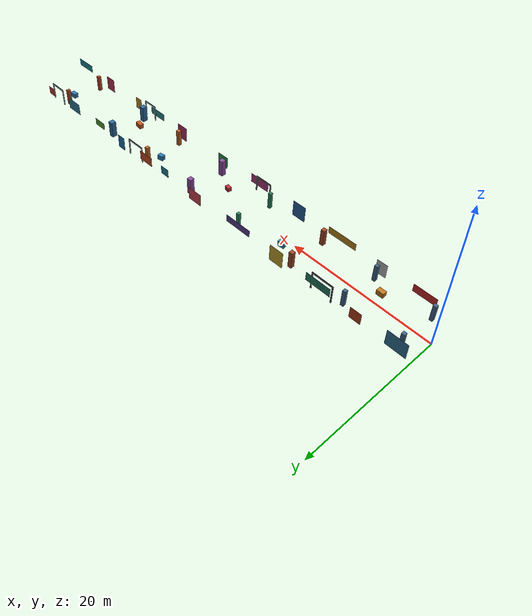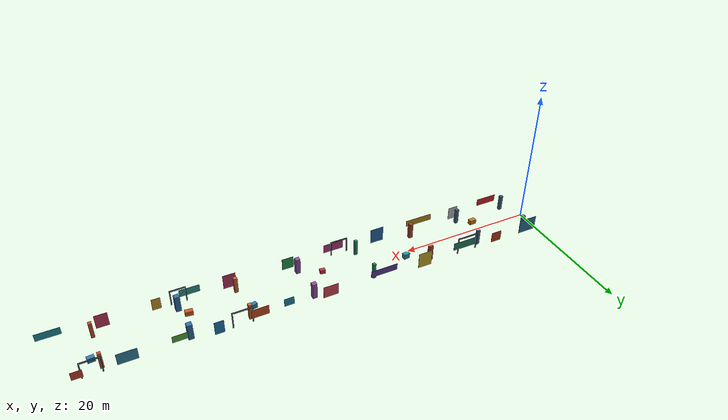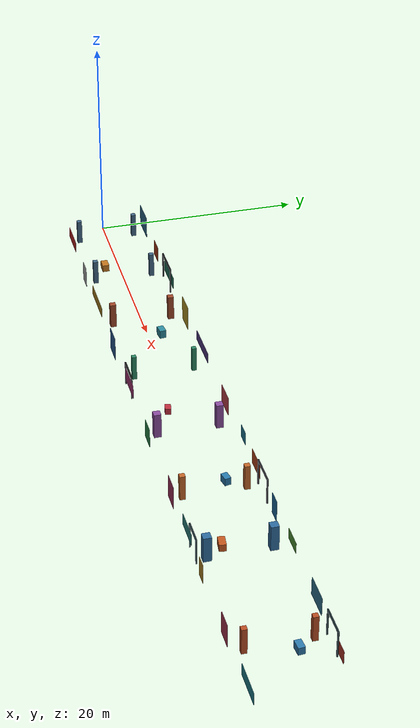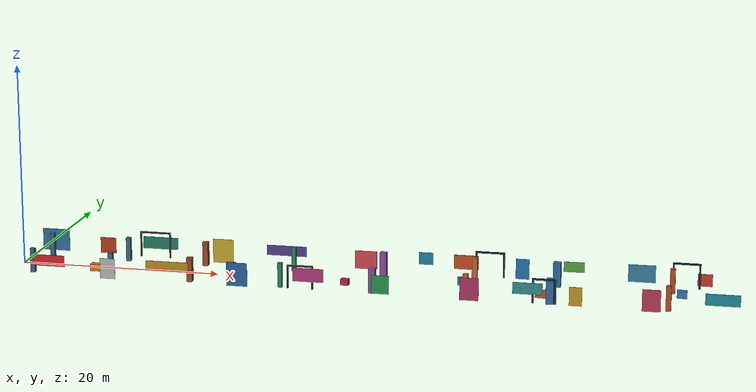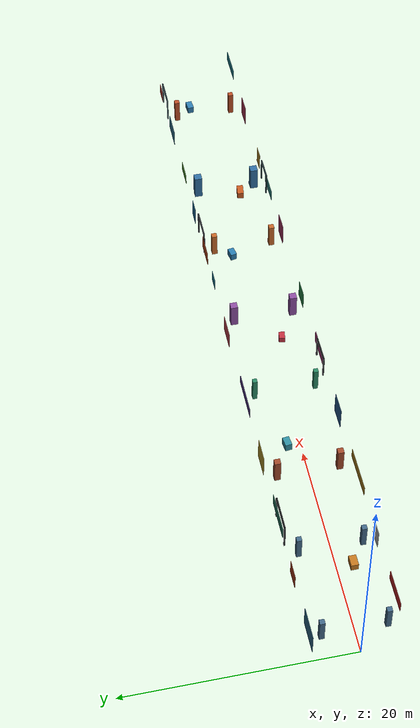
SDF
<sdf version="1.6">
 <world name="terminal_basic">
  <include><uri>model://sun</uri></include>
  <model name="left_panel_01">
   <static>true</static>
   <pose>2 3.88 1.45 0 0 0</pose>
   <link name="link">
    <visual name="visual">
     <geometry><box><size>2.8 0.03 2.2</size></box></geometry>
     <material><diffuse>0.18 0.44 0.58 1</diffuse></material>
    </visual>
   </link>
  </model>
  <model name="left_panel_02">
   <static>true</static>
   <pose>7.5 3.88 1.15 0 0 0</pose>
   <link name="link">
    <visual name="visual">
     <geometry><box><size>1.6 0.03 1.6</size></box></geometry>
     <material><diffuse>0.72 0.24 0.10 1</diffuse></material>
    </visual>
   </link>
  </model>
  <model name="left_panel_03">
   <static>true</static>
   <pose>13 3.88 1.7 0 0 0</pose>
   <link name="link">
    <visual name="visual">
     <geometry><box><size>3.6 0.03 1.2</size></box></geometry>
     <material><diffuse>0.14 0.48 0.38 1</diffuse></material>
    </visual>
   </link>
  </model>
  <model name="left_panel_04">
   <static>true</static>
   <pose>19.5 3.88 1.25 0 0 0</pose>
   <link name="link">
    <visual name="visual">
     <geometry><box><size>2.1 0.03 2.4</size></box></geometry>
     <material><diffuse>0.78 0.66 0.18 1</diffuse></material>
    </visual>
   </link>
  </model>
  <model name="left_panel_05">
   <static>true</static>
   <pose>26 3.88 1.65 0 0 0</pose>
   <link name="link">
    <visual name="visual">
     <geometry><box><size>4.0 0.03 1.0</size></box></geometry>
     <material><diffuse>0.34 0.24 0.56 1</diffuse></material>
    </visual>
   </link>
  </model>
  <model name="left_panel_06">
   <static>true</static>
   <pose>34 3.88 1.2 0 0 0</pose>
   <link name="link">
    <visual name="visual">
     <geometry><box><size>2.2 0.03 1.8</size></box></geometry>
     <material><diffuse>0.82 0.28 0.32 1</diffuse></material>
    </visual>
   </link>
  </model>
  <model name="left_panel_07">
   <static>true</static>
   <pose>40 3.88 1.7 0 0 0</pose>
   <link name="link">
    <visual name="visual">
     <geometry><box><size>1.4 0.03 1.2</size></box></geometry>
     <material><diffuse>0.12 0.52 0.64 1</diffuse></material>
    </visual>
   </link>
  </model>
  <model name="right_panel_01">
   <static>true</static>
   <pose>4 -3.88 1.55 0 0 0</pose>
   <link name="link">
    <visual name="visual">
     <geometry><box><size>3.2 0.03 1.1</size></box></geometry>
     <material>
      <script>
       <uri>model://visual_slam_gazebo/materials/scripts/visual_slam.material</uri>
       <name>VisualSlam/PanelRed</name>
      </script>
     </material>
    </visual>
   </link>
  </model>
  <model name="right_panel_02">
   <static>true</static>
   <pose>10 -3.88 1.1 0 0 0</pose>
   <link name="link">
    <visual name="visual">
     <geometry><box><size>1.5 0.03 2.0</size></box></geometry>
     <material>
      <script>
       <uri>model://visual_slam_gazebo/materials/scripts/visual_slam.material</uri>
       <name>VisualSlam/PanelTeal</name>
      </script>
     </material>
    </visual>
   </link>
  </model>
  <model name="right_panel_03">
   <static>true</static>
   <pose>16 -3.88 1.65 0 0 0</pose>
   <link name="link">
    <visual name="visual">
     <geometry><box><size>4.2 0.03 1.0</size></box></geometry>
     <material><diffuse>0.72 0.54 0.12 1</diffuse></material>
    </visual>
   </link>
  </model>
  <model name="right_panel_04">
   <static>true</static>
   <pose>23 -3.88 1.3 0 0 0</pose>
   <link name="link">
    <visual name="visual">
     <geometry><box><size>2.0 0.03 2.3</size></box></geometry>
     <material><diffuse>0.16 0.38 0.62 1</diffuse></material>
    </visual>
   </link>
  </model>
  <model name="right_panel_05">
   <static>true</static>
   <pose>30 -3.88 1.65 0 0 0</pose>
   <link name="link">
    <visual name="visual">
     <geometry><box><size>3.0 0.03 1.3</size></box></geometry>
     <material><diffuse>0.68 0.22 0.48 1</diffuse></material>
    </visual>
   </link>
  </model>
  <model name="right_panel_06">
   <static>true</static>
   <pose>37 -3.88 1.15 0 0 0</pose>
   <link name="link">
    <visual name="visual">
     <geometry><box><size>1.7 0.03 1.8</size></box></geometry>
     <material><diffuse>0.16 0.58 0.30 1</diffuse></material>
    </visual>
   </link>
  </model>
  <model name="left_panel_08">
   <static>true</static>
   <pose>44 3.88 1.55 0 0 0</pose>
   <link name="link">
    <visual name="visual">
     <geometry><box><size>2.4 0.03 1.4</size></box></geometry>
     <material><diffuse>0.78 0.30 0.12 1</diffuse></material>
    </visual>
   </link>
  </model>
  <model name="left_panel_09">
   <static>true</static>
   <pose>49.5 3.88 1.2 0 0 0</pose>
   <link name="link">
    <visual name="visual">
     <geometry><box><size>1.3 0.03 2.0</size></box></geometry>
     <material><diffuse>0.12 0.46 0.68 1</diffuse></material>
    </visual>
   </link>
  </model>
  <model name="left_panel_10">
   <static>true</static>
   <pose>54.5 3.88 1.7 0 0 0</pose>
   <link name="link">
    <visual name="visual">
     <geometry><box><size>2.0 0.03 1.0</size></box></geometry>
     <material><diffuse>0.34 0.64 0.22 1</diffuse></material>
    </visual>
   </link>
  </model>
  <model name="right_panel_07">
   <static>true</static>
   <pose>45.5 -3.88 1.25 0 0 0</pose>
   <link name="link">
    <visual name="visual">
     <geometry><box><size>1.8 0.03 2.2</size></box></geometry>
     <material><diffuse>0.68 0.20 0.38 1</diffuse></material>
    </visual>
   </link>
  </model>
  <model name="right_panel_08">
   <static>true</static>
   <pose>51 -3.88 1.65 0 0 0</pose>
   <link name="link">
    <visual name="visual">
     <geometry><box><size>2.8 0.03 1.1</size></box></geometry>
     <material><diffuse>0.18 0.56 0.54 1</diffuse></material>
    </visual>
   </link>
  </model>
  <model name="right_panel_09">
   <static>true</static>
   <pose>55.5 -3.88 1.15 0 0 0</pose>
   <link name="link">
    <visual name="visual">
     <geometry><box><size>1.2 0.03 1.8</size></box></geometry>
     <material><diffuse>0.76 0.58 0.16 1</diffuse></material>
    </visual>
   </link>
  </model>
  <model name="left_panel_11">
   <static>true</static>
   <pose>61 3.88 1.45 0 0 0</pose>
   <link name="link">
    <visual name="visual">
     <geometry><box><size>2.6 0.03 1.7</size></box></geometry>
     <material><diffuse>0.20 0.50 0.62 1</diffuse></material>
    </visual>
   </link>
  </model>
  <model name="left_panel_12">
   <static>true</static>
   <pose>67 3.88 1.15 0 0 0</pose>
   <link name="link">
    <visual name="visual">
     <geometry><box><size>1.4 0.03 1.2</size></box></geometry>
     <material><diffuse>0.76 0.24 0.18 1</diffuse></material>
    </visual>
   </link>
  </model>
  <model name="right_panel_10">
   <static>true</static>
   <pose>62.5 -3.88 1.2 0 0 0</pose>
   <link name="link">
    <visual name="visual">
     <geometry><box><size>1.7 0.03 2.1</size></box></geometry>
     <material><diffuse>0.72 0.22 0.34 1</diffuse></material>
    </visual>
   </link>
  </model>
  <model name="right_panel_11">
   <static>true</static>
   <pose>69 -3.88 1.65 0 0 0</pose>
   <link name="link">
    <visual name="visual">
     <geometry><box><size>3.2 0.03 1.1</size></box></geometry>
     <material><diffuse>0.12 0.54 0.60 1</diffuse></material>
    </visual>
   </link>
  </model>
  <model name="door_frame_a">
   <static>true</static>
   <pose>11 3.78 1.55 0 0 0</pose>
   <link name="link">
    <visual name="post_l">
     <geometry><box><size>0.16 0.12 2.6</size></box></geometry>
     <material><diffuse>0.08 0.08 0.09 1</diffuse></material>
    </visual>
    <visual name="post_r">
     <pose>3.0 0 0 0 0 0</pose>
     <geometry><box><size>0.16 0.12 2.6</size></box></geometry>
     <material><diffuse>0.08 0.08 0.09 1</diffuse></material>
    </visual>
    <visual name="top">
     <pose>1.5 0 1.22 0 0 0</pose>
     <geometry><box><size>3.15 0.12 0.16</size></box></geometry>
     <material><diffuse>0.08 0.08 0.09 1</diffuse></material>
    </visual>
   </link>
  </model>
  <model name="door_frame_b">
   <static>true</static>
   <pose>28 -3.78 1.4 0 0 0</pose>
   <link name="link">
    <visual name="post_l">
     <geometry><box><size>0.16 0.12 2.3</size></box></geometry>
     <material><diffuse>0.08 0.08 0.09 1</diffuse></material>
    </visual>
    <visual name="post_r">
     <pose>2.4 0 0 0 0 0</pose>
     <geometry><box><size>0.16 0.12 2.3</size></box></geometry>
     <material><diffuse>0.08 0.08 0.09 1</diffuse></material>
    </visual>
    <visual name="top">
     <pose>1.2 0 1.08 0 0 0</pose>
     <geometry><box><size>2.55 0.12 0.16</size></box></geometry>
     <material><diffuse>0.08 0.08 0.09 1</diffuse></material>
    </visual>
   </link>
  </model>
  <model name="door_frame_c">
   <static>true</static>
   <pose>45 3.78 1.5 0 0 0</pose>
   <link name="link">
    <visual name="post_l">
     <geometry><box><size>0.16 0.12 2.5</size></box></geometry>
     <material><diffuse>0.15 0.15 0.18 1</diffuse></material>
    </visual>
    <visual name="post_r">
     <pose>2.7 0 0 0 0 0</pose>
     <geometry><box><size>0.16 0.12 2.5</size></box></geometry>
     <material><diffuse>0.15 0.15 0.18 1</diffuse></material>
    </visual>
    <visual name="top">
     <pose>1.35 0 1.18 0 0 0</pose>
     <geometry><box><size>2.85 0.12 0.16</size></box></geometry>
     <material><diffuse>0.15 0.15 0.18 1</diffuse></material>
    </visual>
   </link>
  </model>
  <model name="door_frame_d">
   <static>true</static>
   <pose>51.5 -3.78 1.45 0 0 0</pose>
   <link name="link">
    <visual name="post_l">
     <geometry><box><size>0.16 0.12 2.4</size></box></geometry>
     <material><diffuse>0.10 0.18 0.20 1</diffuse></material>
    </visual>
    <visual name="post_r">
     <pose>2.1 0 0 0 0 0</pose>
     <geometry><box><size>0.16 0.12 2.4</size></box></geometry>
     <material><diffuse>0.10 0.18 0.20 1</diffuse></material>
    </visual>
    <visual name="top">
     <pose>1.05 0 1.12 0 0 0</pose>
     <geometry><box><size>2.25 0.12 0.16</size></box></geometry>
     <material><diffuse>0.10 0.18 0.20 1</diffuse></material>
    </visual>
   </link>
  </model>
  <model name="door_frame_e">
   <static>true</static>
   <pose>64 3.78 1.5 0 0 0</pose>
   <link name="link">
    <visual name="post_l">
     <geometry><box><size>0.16 0.12 2.5</size></box></geometry>
     <material><diffuse>0.08 0.16 0.18 1</diffuse></material>
    </visual>
    <visual name="post_r">
     <pose>2.5 0 0 0 0 0</pose>
     <geometry><box><size>0.16 0.12 2.5</size></box></geometry>
     <material><diffuse>0.08 0.16 0.18 1</diffuse></material>
    </visual>
    <visual name="top">
     <pose>1.25 0 1.18 0 0 0</pose>
     <geometry><box><size>2.65 0.12 0.16</size></box></geometry>
     <material><diffuse>0.08 0.16 0.18 1</diffuse></material>
    </visual>
   </link>
  </model>
  <model name="pillar_1">
   <static>true</static>
   <pose>2 2.8 1.2 0 0 0</pose>
   <link name="link">
    <collision name="collision"><geometry><box><size>0.45 0.45 2.4</size></box></geometry></collision>
    <visual name="visual">
     <geometry><box><size>0.45 0.45 2.4</size></box></geometry>
     <material><diffuse>0.25 0.4 0.52 1</diffuse></material>
    </visual>
   </link>
  </model>
  <model name="pillar_2">
   <static>true</static>
   <pose>2 -2.8 1.2 0 0 0</pose>
   <link name="link">
    <collision name="collision"><geometry><box><size>0.45 0.45 2.4</size></box></geometry></collision>
    <visual name="visual">
     <geometry><box><size>0.45 0.45 2.4</size></box></geometry>
     <material><diffuse>0.25 0.4 0.52 1</diffuse></material>
    </visual>
   </link>
  </model>
  <model name="pillar_3">
   <static>true</static>
   <pose>10 2.8 1.2 0 0 0</pose>
   <link name="link">
    <collision name="collision"><geometry><box><size>0.45 0.45 2.4</size></box></geometry></collision>
    <visual name="visual">
     <geometry><box><size>0.45 0.45 2.4</size></box></geometry>
     <material><diffuse>0.25 0.4 0.52 1</diffuse></material>
    </visual>
   </link>
  </model>
  <model name="pillar_4">
   <static>true</static>
   <pose>10 -2.8 1.2 0 0 0</pose>
   <link name="link">
    <collision name="collision"><geometry><box><size>0.45 0.45 2.4</size></box></geometry></collision>
    <visual name="visual">
     <geometry><box><size>0.45 0.45 2.4</size></box></geometry>
     <material><diffuse>0.25 0.4 0.52 1</diffuse></material>
    </visual>
   </link>
  </model>
  <model name="pillar_5">
   <static>true</static>
   <pose>18 2.8 1.2 0 0 0</pose>
   <link name="link">
    <collision name="collision"><geometry><box><size>0.55 0.55 2.4</size></box></geometry></collision>
    <visual name="visual">
     <geometry><box><size>0.55 0.55 2.4</size></box></geometry>
     <material><diffuse>0.62 0.28 0.16 1</diffuse></material>
    </visual>
   </link>
  </model>
  <model name="pillar_6">
   <static>true</static>
   <pose>18 -2.8 1.2 0 0 0</pose>
   <link name="link">
    <collision name="collision"><geometry><box><size>0.55 0.55 2.4</size></box></geometry></collision>
    <visual name="visual">
     <geometry><box><size>0.55 0.55 2.4</size></box></geometry>
     <material><diffuse>0.62 0.28 0.16 1</diffuse></material>
    </visual>
   </link>
  </model>
  <model name="pillar_7">
   <static>true</static>
   <pose>27 2.8 1.2 0 0 0</pose>
   <link name="link">
    <collision name="collision"><geometry><box><size>0.42 0.42 2.4</size></box></geometry></collision>
    <visual name="visual">
     <geometry><box><size>0.42 0.42 2.4</size></box></geometry>
     <material><diffuse>0.16 0.52 0.38 1</diffuse></material>
    </visual>
   </link>
  </model>
  <model name="pillar_8">
   <static>true</static>
   <pose>27 -2.8 1.2 0 0 0</pose>
   <link name="link">
    <collision name="collision"><geometry><box><size>0.42 0.42 2.4</size></box></geometry></collision>
    <visual name="visual">
     <geometry><box><size>0.42 0.42 2.4</size></box></geometry>
     <material><diffuse>0.16 0.52 0.38 1</diffuse></material>
    </visual>
   </link>
  </model>
  <model name="pillar_9">
   <static>true</static>
   <pose>36 2.8 1.2 0 0 0</pose>
   <link name="link">
    <collision name="collision"><geometry><box><size>0.65 0.65 2.4</size></box></geometry></collision>
    <visual name="visual">
     <geometry><box><size>0.65 0.65 2.4</size></box></geometry>
     <material><diffuse>0.54 0.30 0.62 1</diffuse></material>
    </visual>
   </link>
  </model>
  <model name="pillar_10">
   <static>true</static>
   <pose>36 -2.8 1.2 0 0 0</pose>
   <link name="link">
    <collision name="collision"><geometry><box><size>0.65 0.65 2.4</size></box></geometry></collision>
    <visual name="visual">
     <geometry><box><size>0.65 0.65 2.4</size></box></geometry>
     <material><diffuse>0.54 0.30 0.62 1</diffuse></material>
    </visual>
   </link>
  </model>
  <model name="pillar_11">
   <static>true</static>
   <pose>45 2.8 1.2 0 0 0</pose>
   <link name="link">
    <collision name="collision"><geometry><box><size>0.5 0.5 2.4</size></box></geometry></collision>
    <visual name="visual">
     <geometry><box><size>0.5 0.5 2.4</size></box></geometry>
     <material><diffuse>0.76 0.40 0.16 1</diffuse></material>
    </visual>
   </link>
  </model>
  <model name="pillar_12">
   <static>true</static>
   <pose>45 -2.8 1.2 0 0 0</pose>
   <link name="link">
    <collision name="collision"><geometry><box><size>0.5 0.5 2.4</size></box></geometry></collision>
    <visual name="visual">
     <geometry><box><size>0.5 0.5 2.4</size></box></geometry>
     <material><diffuse>0.76 0.40 0.16 1</diffuse></material>
    </visual>
   </link>
  </model>
  <model name="pillar_13">
   <static>true</static>
   <pose>53 2.8 1.2 0 0 0</pose>
   <link name="link">
    <collision name="collision"><geometry><box><size>0.72 0.72 2.4</size></box></geometry></collision>
    <visual name="visual">
     <geometry><box><size>0.72 0.72 2.4</size></box></geometry>
     <material><diffuse>0.18 0.42 0.62 1</diffuse></material>
    </visual>
   </link>
  </model>
  <model name="pillar_14">
   <static>true</static>
   <pose>53 -2.8 1.2 0 0 0</pose>
   <link name="link">
    <collision name="collision"><geometry><box><size>0.72 0.72 2.4</size></box></geometry></collision>
    <visual name="visual">
     <geometry><box><size>0.72 0.72 2.4</size></box></geometry>
     <material><diffuse>0.18 0.42 0.62 1</diffuse></material>
    </visual>
   </link>
  </model>
  <model name="pillar_15">
   <static>true</static>
   <pose>64 2.8 1.2 0 0 0</pose>
   <link name="link">
    <collision name="collision"><geometry><box><size>0.48 0.48 2.4</size></box></geometry></collision>
    <visual name="visual">
     <geometry><box><size>0.48 0.48 2.4</size></box></geometry>
     <material><diffuse>0.72 0.30 0.14 1</diffuse></material>
    </visual>
   </link>
  </model>
  <model name="pillar_16">
   <static>true</static>
   <pose>64 -2.8 1.2 0 0 0</pose>
   <link name="link">
    <collision name="collision"><geometry><box><size>0.48 0.48 2.4</size></box></geometry></collision>
    <visual name="visual">
     <geometry><box><size>0.48 0.48 2.4</size></box></geometry>
     <material><diffuse>0.72 0.30 0.14 1</diffuse></material>
    </visual>
   </link>
  </model>
  <model name="luggage_cart_static">
   <static>true</static>
   <pose>8 -1.45 0.45 0 0 0</pose>
   <link name="link">
    <visual name="visual">
     <geometry><box><size>1.0 0.65 0.7</size></box></geometry>
     <material><diffuse>0.75 0.46 0.12 1</diffuse></material>
    </visual>
   </link>
  </model>
  <model name="luggage_cart_static_2">
   <static>true</static>
   <pose>21 1.2 0.5 0 0 0.12</pose>
   <link name="link">
    <visual name="visual">
     <geometry><box><size>0.9 0.6 0.8</size></box></geometry>
     <material><diffuse>0.18 0.55 0.62 1</diffuse></material>
    </visual>
   </link>
  </model>
  <model name="luggage_cart_static_3">
   <static>true</static>
   <pose>33 -1.1 0.38 0 0 -0.18</pose>
   <link name="link">
    <visual name="visual">
     <geometry><box><size>0.75 0.55 0.6</size></box></geometry>
     <material><diffuse>0.74 0.18 0.24 1</diffuse></material>
    </visual>
   </link>
  </model>
  <model name="luggage_cart_static_4">
   <static>true</static>
   <pose>44 1.25 0.45 0 0 0.20</pose>
   <link name="link">
    <visual name="visual">
     <geometry><box><size>0.85 0.58 0.72</size></box></geometry>
     <material><diffuse>0.16 0.48 0.68 1</diffuse></material>
    </visual>
   </link>
  </model>
  <model name="luggage_cart_static_5">
   <static>true</static>
   <pose>52 -1.25 0.42 0 0 -0.12</pose>
   <link name="link">
    <visual name="visual">
     <geometry><box><size>1.1 0.62 0.68</size></box></geometry>
     <material><diffuse>0.76 0.34 0.12 1</diffuse></material>
    </visual>
   </link>
  </model>
  <model name="luggage_cart_static_6">
   <static>true</static>
   <pose>65 1.3 0.42 0 0 0.08</pose>
   <link name="link">
    <visual name="visual">
     <geometry><box><size>0.95 0.60 0.70</size></box></geometry>
     <material><diffuse>0.18 0.48 0.68 1</diffuse></material>
    </visual>
   </link>
  </model>
 </world>
</sdf>
